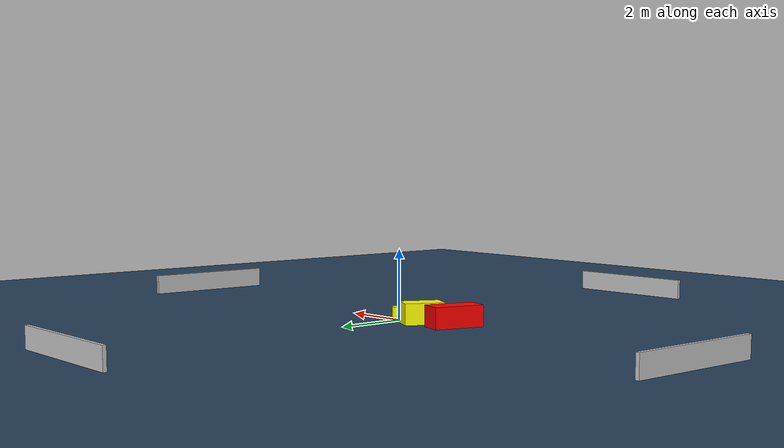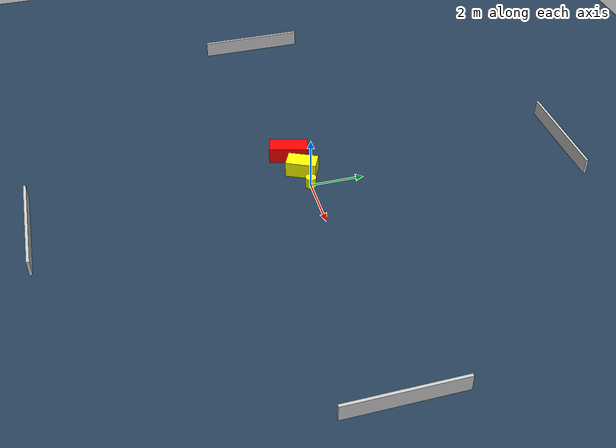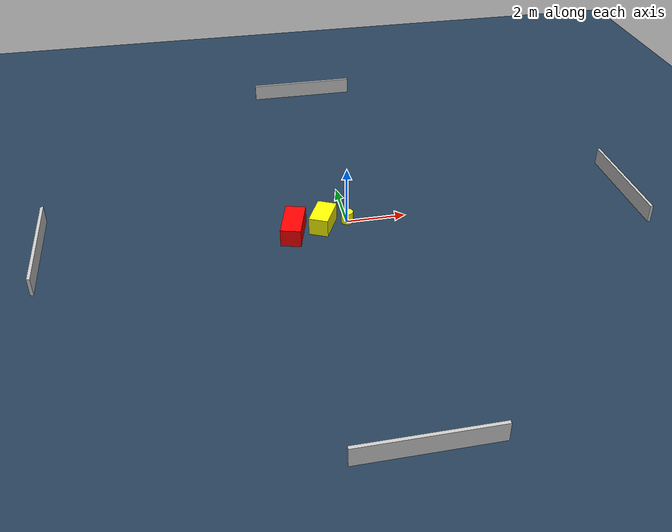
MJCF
<?xml version="1.0" ?>
<mujoco model="generated_environment">
  <option timestep="0.01" integrator="RK4" cone="elliptic"/>
  <default>
    <geom density="1"/>
  </default>
  <asset>
    <texture builtin="gradient" height="3072" name="skybox" rgb1="0.3 0.5 0.7" rgb2="0 0 0" type="skybox" width="512"/>
    <texture builtin="checker" height="300" name="groundplane" rgb1="0.2 0.3 0.4" rgb2="0.1 0.2 0.3" type="2d" width="300"/>
    <material name="groundplane" reflectance="0.2" texrepeat="5 5" texture="groundplane"/>
  </asset>
  <worldbody>
    <light dir="0 0 -1" directional="true" pos="0 0 1.5"/>
    <geom condim="3" friction="0.5 0.005 0.001" material="groundplane" name="floor" pos="0 0 0" size="0 0 0.05" type="plane"/>
    <body name="walls">
      <geom name="wall_1" condim="4" pos="-10.0 0.0 0.3" rgba="0.800000011920929 0.800000011920929 0.800000011920929 1.0" size="0.05 2.0 0.3" type="box"/>
      <geom name="wall_2" condim="4" pos="10.0 0.0 0.3" rgba="0.800000011920929 0.800000011920929 0.800000011920929 1.0" size="0.05 2.0 0.3" type="box"/>
      <geom name="wall_3" condim="4" pos="0.0 -10.0 0.3" rgba="0.800000011920929 0.800000011920929 0.800000011920929 1.0" size="2.0 0.05 0.3" type="box"/>
      <geom name="wall_4" condim="4" pos="0.0 10.0 0.3" rgba="0.800000011920929 0.800000011920929 0.800000011920929 1.0" size="2.0 0.05 0.3" type="box"/>
    </body>
    <body name="robot">
      <joint name="joint_x" type="slide" pos="0 0 0" axis="1 0 0"/>
      <joint name="joint_y" type="slide" pos="0 0 0" axis="0 1 0"/>
      <geom name="robot" type="cylinder" pos="0.0 0.0 0.2" size="0.2 0.2 0.0" mass="5.0" friction="1.0 0.005 0.0001" condim="4" rgba="1.0 1.0 0.0 1.0"/>
    </body>
    <body name="obstacle_1_movable">
      <geom name="obstacle_1_movable" condim="4" pos="-0.8419687607881761 -0.1071895060578248 0.3" euler="0 0 334.32962423884027" friction="0.0 0.005 0.001" rgba="1.0 1.0 0.0 1.0" size="0.3233244015519774 0.5622781951404761 0.3" type="box" mass="0.1"/>
      <joint type="free"/>
    </body>
    <body name="obstacle_2_static">
      <geom name="obstacle_2_static" condim="4" pos="-1.8732935288166053 -0.3510883733524926 0.3" euler="0 0 254.80764256824645" friction="0.0 0.005 0.001" rgba="1.0 0.0 0.0 1.0" size="0.7236021163083384 0.3359843815445556 0.3" type="box"/>
    </body>
  </worldbody>
  <actuator>
    <motor name="actuator_x" joint="joint_x" gear="1" ctrlrange="-1 1"/>
    <motor name="actuator_y" joint="joint_y" gear="1" ctrlrange="-1 1"/>
  </actuator>
</mujoco>
